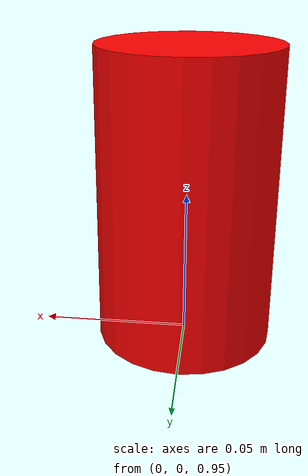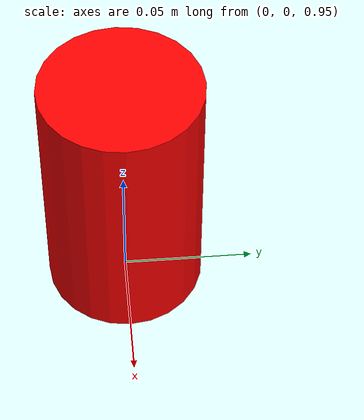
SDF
<?xml version="1.0" ?>
<sdf version="1.8">
  <model name="os1_lidar" canonical_link="base">
    <static> true </static>
    <link name="base">
      <pose>  0 0 0 0 0 0 </pose>
    </link>
    <link name="lidar_link">
     <visual name="lidar_visual">
       <geometry>
          <cylinder>
            <radius>0.03</radius>
            <length>0.10</length>
          </cylinder>
        </geometry>
        <material>
          <ambient>1.0 0.0 0.0 1</ambient>
          <diffuse>1.0 0.0 0.0 1</diffuse>
          <specular>1.0 0.0 0.0 1</specular>
        </material>
      </visual>
      <pose relative_to="base"> 0 0 1 0 0 0 </pose>
      <frame name="lidar_frame" attached_to="base">
        <pose> 0 0 0 0 0 0 </pose>
      </frame>
      <sensor name="gpu_lidar" type="gpu_lidar">
        <pose relative_to='lidar_frame'>0 0 0 0 0 0</pose>
        <topic>scan</topic>
        <update_rate>300</update_rate>
        <ray>
          <scan>
            <horizontal>
              <samples>1032</samples>
              <resolution>1</resolution>
              <min_angle>0</min_angle>
              <max_angle>6.2831</max_angle>
            </horizontal>
            <vertical>
              <samples>128</samples>
              <resolution>1</resolution>
              <min_angle>-0.61</min_angle>
              <max_angle>0.61</max_angle>
            </vertical>
          </scan>
          <range>
            <min>0.5</min>
            <max>30.0</max>
            <resolution>1</resolution>
          </range>
          <noise>
            <type>gaussian</type>
            <mean>0.0</mean>
            <stddev>0.01</stddev>
          </noise>
        </ray>
        <always_on>1</always_on>
        <visualize>true</visualize>
        </sensor>

      </link>
      <plugin
        filename="librandom_mover.so"
        name="lidar_sim::random_mover">
        <move_group>tracker</move_group>
        <range>0 1</range>
        <z_range>3 6</z_range>
        <roll_range>-0.21 0.21</roll_range>
        <pitch_range>-0.21 0.21</pitch_range>
        <yaw_range>0 6.28</yaw_range>
        <appearance_p>1.0</appearance_p>
        <min_dist>5</min_dist>
      </plugin>
  </model>
</sdf>
